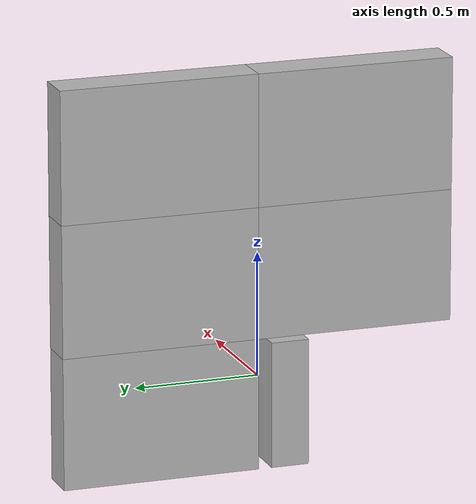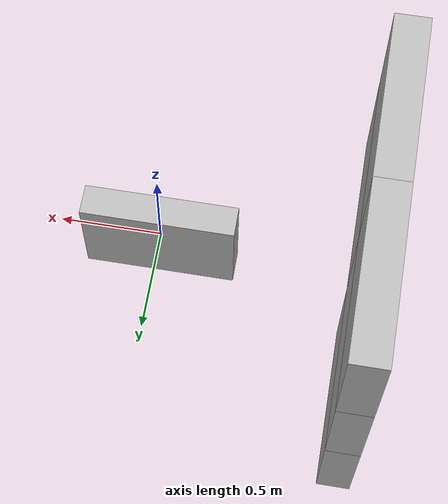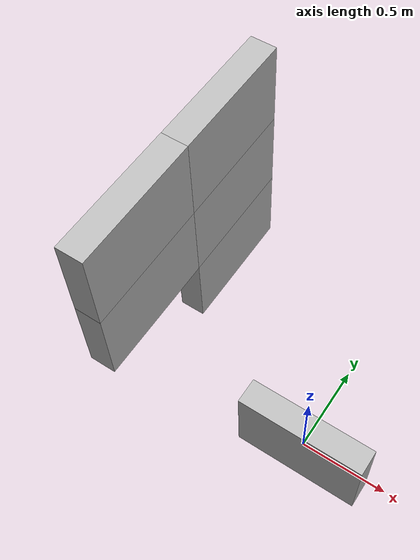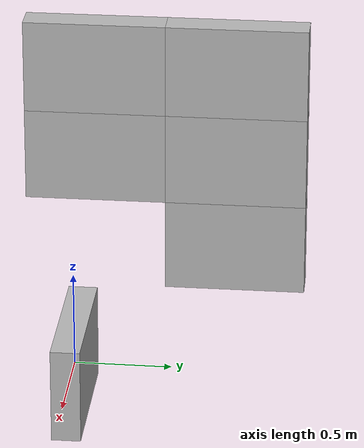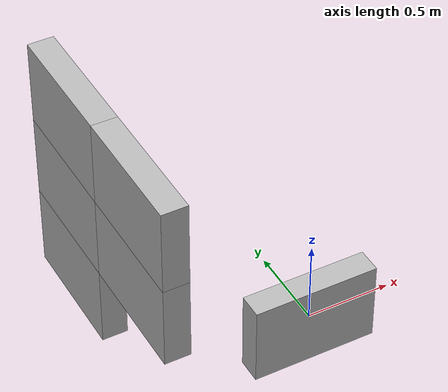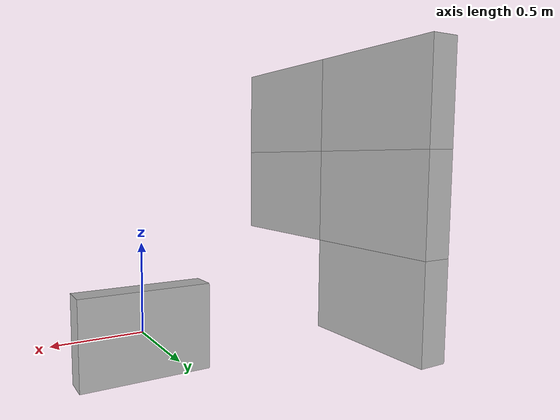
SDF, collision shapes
<?xml version='1_0'?>
<sdf version="1.5">
  <model name="boxes_Lcorridor model">
    <pose>0 0 0 0 0 0</pose>
    <static>true</static>
    <!-- 1st row -->
    <link name="link_0">
      <collision name="collision_0">
        <pose>-1 0 1.25 0 0 1.57079633</pose>
        <geometry>
          <box>
            <size>0.75 0.15 0.5</size>
          </box>
        </geometry>
      </collision>
      <visual name='visual_0'>
        <pose>-1 0 1.25 0 0 1.57079633</pose>
        <geometry>
            <mesh>
              <uri>model://boxes_Lcorridor/meshes/blue_circle_border.dae</uri>
            </mesh>
        </geometry>
      </visual>
      <collision name="collision_1">
        <pose>-1 0 0.75 0 0 1.57079633</pose>
        <geometry>
          <box>
            <size>0.75 0.15 0.5</size>
          </box>
        </geometry>
      </collision>
      <visual name='visual_1'>
        <pose>-1 0 0.75 0 0 1.57079633</pose>
        <geometry>
            <mesh>
              <uri>model://boxes_Lcorridor/meshes/red_circle_border.dae</uri>
            </mesh>
        </geometry>
      </visual>
      <collision name="collision_2">
        <geometry>
          <box>
            <size>0.75 0.15 0.5</size>
          </box>
        </geometry>
      </collision>
      <visual name='visual_2'>
        <pose>-1 0 0.25 0 0 1.57079633</pose>
        <geometry>
            <mesh>
              <uri>model://boxes_Lcorridor/meshes/green_circle_border.dae</uri>
            </mesh>
        </geometry>
      </visual>
      <collision name="collision_3">
        <pose>-1 0.75 0.25 0 0 1.57079633</pose>
        <geometry>
          <box>
            <size>0.75 0.15 0.5</size>
          </box>
        </geometry>
      </collision>
      <visual name='visual_3'>
        <pose>-1 0.75 0.25 0 0 1.57079633</pose>
        <geometry>
            <mesh>
              <uri>model://boxes_Lcorridor/meshes/blue_circle_border.dae</uri>
            </mesh>
        </geometry>
      </visual>
      <collision name="collision_4">
        <pose>-1 0.75 1.25 0 0 1.57079633</pose>
        <geometry>
          <box>
            <size>0.75 0.15 0.5</size>
          </box>
        </geometry>
      </collision>
      <visual name='visual_4'>
        <pose>-1 0.75 1.25 0 0 1.57079633</pose>
        <geometry>
            <mesh>
              <uri>model://boxes_Lcorridor/meshes/red_circle_border.dae</uri>
            </mesh>
        </geometry>
      </visual>
      <collision name="collision_5">
        <pose>-1 0.75 0.75 0 0 1.57079633</pose>
        <geometry>
          <box>
            <size>0.75 0.15 0.5</size>
          </box>
        </geometry>
      </collision>
      <visual name='visual_5'>
        <pose>-1 0.75 0.75 0 0 1.57079633</pose>
        <geometry>
            <mesh>
              <uri>model://boxes_Lcorridor/meshes/green_circle_border.dae</uri>
            </mesh>
        </geometry>
      </visual>
    </link>
  </model>
</sdf>
